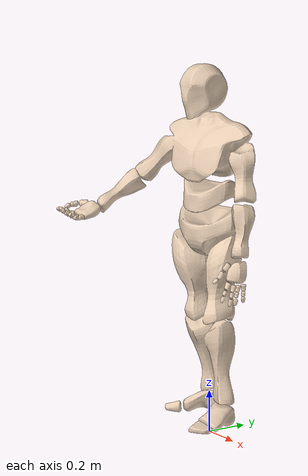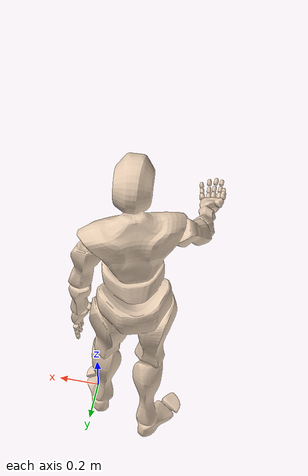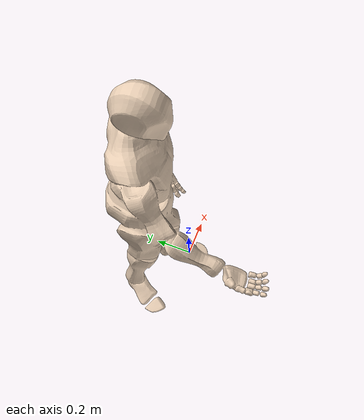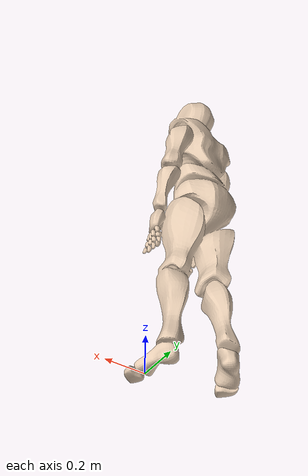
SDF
<?xml version="1.0" ?>
<sdf version="1.4">
  <model name="challenge_human">
    <static>true</static>

    <link name="link">
      <inertial>
        <mass>70.0</mass>
        <inertia>
          <ixx>1.0</ixx>
          <ixy>0.0</ixy>
          <ixz>0.0</ixz>
          <iyy>1.0</iyy>
          <iyz>0.0</iyz>
          <izz>1.0</izz>
        </inertia>
      </inertial>

      <collision name="collision">
        <geometry>
          <mesh>
            <uri>model://challenge_human/mesh/human_model.stl</uri>
            <scale>1 1 1</scale>
          </mesh>
        </geometry>
      </collision>

      <visual name="visual">
        <geometry>
          <mesh>
            <uri>model://challenge_human/mesh/human_model.stl</uri>
            <scale>1 1 1</scale>
          </mesh>
        </geometry>
        <material>
          <ambient>0.8 0.7 0.6 1</ambient>
          <diffuse>0.9 0.8 0.7 1</diffuse>
          <specular>0.2 0.2 0.2 1</specular>
          <emissive>0 0 0 1</emissive>
        </material>
      </visual>
    </link>
  </model>
</sdf>
